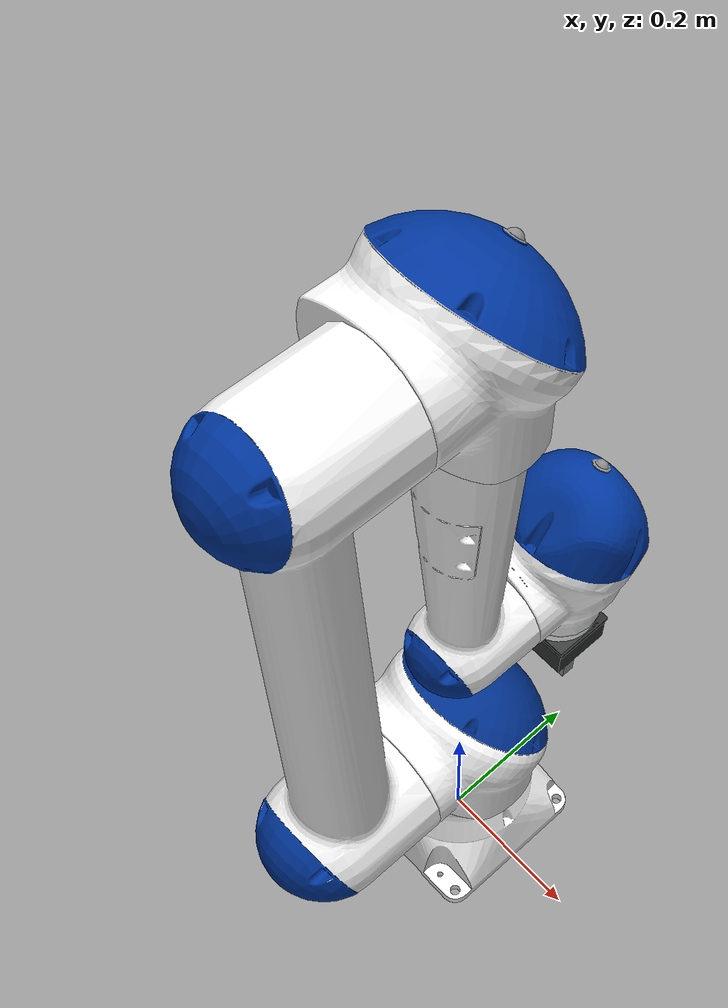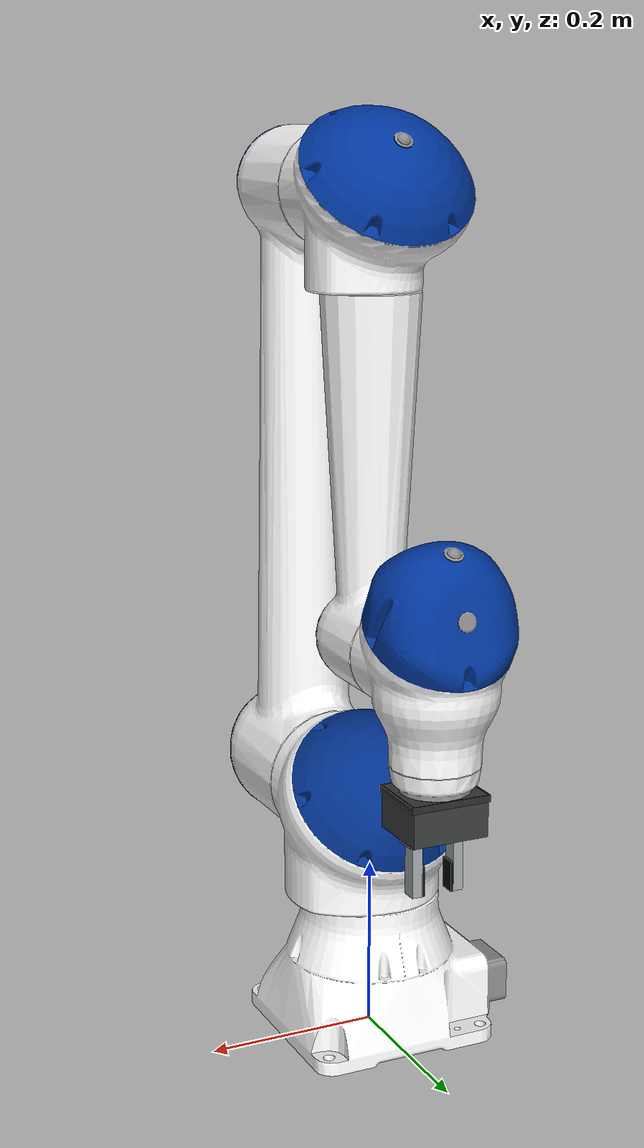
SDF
<?xml version="1.0"?>
<sdf version="1.9">
  <model name="yaskawa_hc10">
    <self_collide>false</self_collide>
    <allow_auto_disable>false</allow_auto_disable>

    <link name="base_link">
      <inertial>
        <pose>0 0 0.10 0 0 0</pose>
        <mass>24.0</mass>
        <inertia>
          <ixx>0.35</ixx>
          <iyy>0.35</iyy>
          <izz>0.30</izz>
          <ixy>0</ixy>
          <ixz>0</ixz>
          <iyz>0</iyz>
        </inertia>
      </inertial>
      <visual name="base_link_visual">
        <geometry>
          <mesh>
            <uri>model://yaskawa_hc10/meshes/hc10/visual/base_link.dae</uri>
          </mesh>
        </geometry>
      </visual>
    </link>

    <link name="link_1_s">
      <pose relative_to="joint_1_s">0 0 0 0 0 0</pose>
      <inertial>
        <mass>8.5</mass>
        <inertia>
          <ixx>0.07</ixx>
          <iyy>0.07</iyy>
          <izz>0.05</izz>
          <ixy>0</ixy>
          <ixz>0</ixz>
          <iyz>0</iyz>
        </inertia>
      </inertial>
      <visual name="link_1_s_visual">
        <geometry>
          <mesh>
            <uri>model://yaskawa_hc10/meshes/hc10/visual/link_1_s.dae</uri>
          </mesh>
        </geometry>
      </visual>
    </link>

    <link name="link_2_l">
      <pose relative_to="joint_2_l">0 0 0 0 0 0</pose>
      <inertial>
        <mass>7.0</mass>
        <inertia>
          <ixx>0.06</ixx>
          <iyy>0.06</iyy>
          <izz>0.05</izz>
          <ixy>0</ixy>
          <ixz>0</ixz>
          <iyz>0</iyz>
        </inertia>
      </inertial>
      <visual name="link_2_l_visual">
        <geometry>
          <mesh>
            <uri>model://yaskawa_hc10/meshes/hc10/visual/link_2_l.dae</uri>
          </mesh>
        </geometry>
      </visual>
    </link>

    <link name="link_3_u">
      <pose relative_to="joint_3_u">0 0 0 0 0 0</pose>
      <inertial>
        <mass>6.0</mass>
        <inertia>
          <ixx>0.05</ixx>
          <iyy>0.05</iyy>
          <izz>0.04</izz>
          <ixy>0</ixy>
          <ixz>0</ixz>
          <iyz>0</iyz>
        </inertia>
      </inertial>
      <visual name="link_3_u_visual">
        <geometry>
          <mesh>
            <uri>model://yaskawa_hc10/meshes/hc10/visual/link_3_u.dae</uri>
          </mesh>
        </geometry>
      </visual>
    </link>

    <link name="link_4_r">
      <pose relative_to="joint_4_r">0 0 0 0 0 0</pose>
      <inertial>
        <mass>3.5</mass>
        <inertia>
          <ixx>0.03</ixx>
          <iyy>0.03</iyy>
          <izz>0.02</izz>
          <ixy>0</ixy>
          <ixz>0</ixz>
          <iyz>0</iyz>
        </inertia>
      </inertial>
      <visual name="link_4_r_visual">
        <geometry>
          <mesh>
            <uri>model://yaskawa_hc10/meshes/hc10/visual/link_4_r.dae</uri>
          </mesh>
        </geometry>
      </visual>
    </link>

    <link name="link_5_b">
      <pose relative_to="joint_5_b">0 0 0 0 0 0</pose>
      <inertial>
        <mass>2.5</mass>
        <inertia>
          <ixx>0.02</ixx>
          <iyy>0.02</iyy>
          <izz>0.015</izz>
          <ixy>0</ixy>
          <ixz>0</ixz>
          <iyz>0</iyz>
        </inertia>
      </inertial>
      <visual name="link_5_b_visual">
        <geometry>
          <mesh>
            <uri>model://yaskawa_hc10/meshes/hc10/visual/link_5_b.dae</uri>
          </mesh>
        </geometry>
      </visual>
    </link>

    <link name="link_6_t">
      <pose relative_to="joint_6_t">0 0 0 0 0 0</pose>
      <inertial>
        <mass>1.2</mass>
        <inertia>
          <ixx>0.008</ixx>
          <iyy>0.008</iyy>
          <izz>0.006</izz>
          <ixy>0</ixy>
          <ixz>0</ixz>
          <iyz>0</iyz>
        </inertia>
      </inertial>
      <visual name="link_6_t_visual">
        <geometry>
          <mesh>
            <uri>model://yaskawa_hc10/meshes/hc10/visual/link_6_t.dae</uri>
          </mesh>
        </geometry>
      </visual>
    </link>

    <link name="tool0">
      <pose relative_to="joint_6_t-tool0">0 0 0 0 0 0</pose>
    </link>
    <link name="base">
      <pose relative_to="base_link-base">0 0 0 0 0 0</pose>
    </link>
    <link name="gripper">
      <pose relative_to="tool0-gripper">0 0 0 0 0 0</pose>
      <inertial>
        <pose>0.04035 0 0.0241 0 0 0</pose>
        <mass>1.0</mass>
        <inertia>
          <ixx>0.0007</ixx>
          <iyy>0.0012</iyy>
          <izz>0.0011</izz>
          <ixy>0</ixy>
          <ixz>0</ixz>
          <iyz>0</iyz>
        </inertia>
      </inertial>
      <visual name="zimmer_geh6040il_body_visual">
        <pose>0 0 0.024 0 0 0</pose>
        <geometry>
          <box>
            <size>0.090 0.078 0.048</size>
          </box>
        </geometry>
        <material>
          <ambient>0.22 0.23 0.23 1</ambient>
          <diffuse>0.22 0.23 0.23 1</diffuse>
        </material>
      </visual>
      <visual name="zimmer_geh6040il_lower_cap_visual">
        <pose>0 0 0.004 0 0 0</pose>
        <geometry>
          <box>
            <size>0.094 0.080 0.008</size>
          </box>
        </geometry>
        <material>
          <ambient>0.16 0.17 0.17 1</ambient>
          <diffuse>0.16 0.17 0.17 1</diffuse>
        </material>
      </visual>
      <visual name="zimmer_geh6040il_top_guide_visual">
        <pose>0 0 0.047 0 0 0</pose>
        <geometry>
          <box>
            <size>0.072 0.042 0.004</size>
          </box>
        </geometry>
        <material>
          <ambient>0.12 0.13 0.13 1</ambient>
          <diffuse>0.12 0.13 0.13 1</diffuse>
        </material>
      </visual>
    </link>
    <link name="gripper_left_jaw">
      <pose relative_to="gripper_left_jaw_joint">0 0 0 0 0 0</pose>
      <inertial>
        <pose>0 0 0.038 0 0 0</pose>
        <mass>0.08</mass>
        <inertia>
          <ixx>0.00004</ixx>
          <iyy>0.00004</iyy>
          <izz>0.00001</izz>
          <ixy>0</ixy>
          <ixz>0</ixz>
          <iyz>0</iyz>
        </inertia>
      </inertial>
      <visual name="left_jaw_mount_visual">
        <pose>0 0 0.005 0 0 0</pose>
        <geometry>
          <box>
            <size>0.022 0.028 0.010</size>
          </box>
        </geometry>
        <material>
          <ambient>0.62 0.64 0.64 1</ambient>
          <diffuse>0.62 0.64 0.64 1</diffuse>
        </material>
      </visual>
      <visual name="left_jaw_slider_visual">
        <pose>0.0125 0 0.001 0 0 0</pose>
        <geometry>
          <box>
            <size>0.025 0.012 0.006</size>
          </box>
        </geometry>
        <material>
          <ambient>0.42 0.44 0.44 1</ambient>
          <diffuse>0.42 0.44 0.44 1</diffuse>
        </material>
      </visual>
      <visual name="left_jaw_finger_visual">
        <pose>0 0 0.040 0 0 0</pose>
        <geometry>
          <box>
            <size>0.012 0.018 0.060</size>
          </box>
        </geometry>
        <material>
          <ambient>0.62 0.64 0.64 1</ambient>
          <diffuse>0.62 0.64 0.64 1</diffuse>
        </material>
      </visual>
      <visual name="left_jaw_pad_visual">
        <pose>0.0075 0 0.0525 0 0 0</pose>
        <geometry>
          <box>
            <size>0.003 0.019 0.035</size>
          </box>
        </geometry>
        <material>
          <ambient>0.03 0.03 0.03 1</ambient>
          <diffuse>0.03 0.03 0.03 1</diffuse>
        </material>
      </visual>
      <collision name="left_jaw_pad_collision">
        <pose>0.0075 0 0.0525 0 0 0</pose>
        <geometry><box><size>0.004 0.019 0.035</size></box></geometry>
        <surface>
          <friction><ode><mu>3.0</mu><mu2>3.0</mu2></ode></friction>
          <contact><ode><kp>1000000</kp><kd>100</kd><max_vel>0.01</max_vel><min_depth>0.001</min_depth></ode></contact>
        </surface>
      </collision>
    </link>
    <link name="gripper_right_jaw">
      <pose relative_to="gripper_right_jaw_joint">0 0 0 0 0 0</pose>
      <inertial>
        <pose>0 0 0.038 0 0 0</pose>
        <mass>0.08</mass>
        <inertia>
          <ixx>0.00004</ixx>
          <iyy>0.00004</iyy>
          <izz>0.00001</izz>
          <ixy>0</ixy>
          <ixz>0</ixz>
          <iyz>0</iyz>
        </inertia>
      </inertial>
      <visual name="right_jaw_mount_visual">
        <pose>0 0 0.005 0 0 0</pose>
        <geometry>
          <box>
            <size>0.022 0.028 0.010</size>
          </box>
        </geometry>
        <material>
          <ambient>0.62 0.64 0.64 1</ambient>
          <diffuse>0.62 0.64 0.64 1</diffuse>
        </material>
      </visual>
      <visual name="right_jaw_slider_visual">
        <pose>-0.0125 0 0.001 0 0 0</pose>
        <geometry>
          <box>
            <size>0.025 0.012 0.006</size>
          </box>
        </geometry>
        <material>
          <ambient>0.42 0.44 0.44 1</ambient>
          <diffuse>0.42 0.44 0.44 1</diffuse>
        </material>
      </visual>
      <visual name="right_jaw_finger_visual">
        <pose>0 0 0.040 0 0 0</pose>
        <geometry>
          <box>
            <size>0.012 0.018 0.060</size>
          </box>
        </geometry>
        <material>
          <ambient>0.62 0.64 0.64 1</ambient>
          <diffuse>0.62 0.64 0.64 1</diffuse>
        </material>
      </visual>
      <visual name="right_jaw_pad_visual">
        <pose>-0.0075 0 0.0525 0 0 0</pose>
        <geometry>
          <box>
            <size>0.003 0.019 0.035</size>
          </box>
        </geometry>
        <material>
          <ambient>0.03 0.03 0.03 1</ambient>
          <diffuse>0.03 0.03 0.03 1</diffuse>
        </material>
      </visual>
      <collision name="right_jaw_pad_collision">
        <pose>-0.0075 0 0.0525 0 0 0</pose>
        <geometry><box><size>0.004 0.019 0.035</size></box></geometry>
        <surface>
          <friction><ode><mu>3.0</mu><mu2>3.0</mu2></ode></friction>
          <contact><ode><kp>1000000</kp><kd>100</kd><max_vel>0.01</max_vel><min_depth>0.001</min_depth></ode></contact>
        </surface>
      </collision>
    </link>
    <link name="gripper_tcp">
      <pose relative_to="gripper_tcp_joint">0 0 0 0 0 0</pose>
    </link>

    <joint name="world_joint" type="fixed">
      <parent>world</parent>
      <child>base_link</child>
    </joint>

    <joint name="joint_1_s" type="revolute">
      <parent>base_link</parent>
      <child>link_1_s</child>
      <pose relative_to="base_link">0 0 0.275 0 0 0</pose>
      <axis>
        <xyz>0 0 1</xyz>
        <limit>
          <lower>-3.14159265359</lower>
          <upper>3.14159265359</upper>
          <effort>700.0</effort>
          <velocity>2.26892802759</velocity>
        </limit>
        <dynamics>
          <damping>10.0</damping>
          <friction>2.0</friction>
        </dynamics>
      </axis>
    </joint>

    <joint name="joint_2_l" type="revolute">
      <parent>link_1_s</parent>
      <child>link_2_l</child>
      <pose relative_to="link_1_s">0 0 0 0 0 0</pose>
      <axis>
        <xyz>0 1 0</xyz>
        <limit>
          <lower>-3.14159265359</lower>
          <upper>3.14159265359</upper>
          <effort>700.0</effort>
          <velocity>2.26892802759</velocity>
        </limit>
        <dynamics>
          <damping>10.0</damping>
          <friction>2.0</friction>
        </dynamics>
      </axis>
    </joint>

    <joint name="joint_3_u" type="revolute">
      <parent>link_2_l</parent>
      <child>link_3_u</child>
      <pose relative_to="link_2_l">0 0 0.700 0 0 0</pose>
      <axis>
        <xyz>0 -1 0</xyz>
        <limit>
          <lower>-0.08726646260</lower>
          <upper>6.19591884458</upper>
          <effort>260.0</effort>
          <velocity>3.14159265359</velocity>
        </limit>
        <dynamics>
          <damping>8.0</damping>
          <friction>1.6</friction>
        </dynamics>
      </axis>
    </joint>

    <joint name="joint_4_r" type="revolute">
      <parent>link_3_u</parent>
      <child>link_4_r</child>
      <pose relative_to="link_3_u">0 0 -0.500 0 0 0</pose>
      <axis>
        <xyz>0 0 1</xyz>
        <limit>
          <lower>-3.14159265359</lower>
          <upper>3.14159265359</upper>
          <effort>39.20</effort>
          <velocity>3.14159265359</velocity>
        </limit>
        <dynamics>
          <damping>4.0</damping>
          <friction>0.8</friction>
        </dynamics>
      </axis>
    </joint>

    <joint name="joint_5_b" type="revolute">
      <parent>link_4_r</parent>
      <child>link_5_b</child>
      <pose relative_to="link_4_r">0 0.162 0 0 0 0</pose>
      <axis>
        <xyz>0 -1 0</xyz>
        <limit>
          <lower>-3.14159265359</lower>
          <upper>3.14159265359</upper>
          <effort>31.36</effort>
          <velocity>4.36332312999</velocity>
        </limit>
        <dynamics>
          <damping>3.0</damping>
          <friction>0.6</friction>
        </dynamics>
      </axis>
    </joint>

    <joint name="joint_6_t" type="revolute">
      <parent>link_5_b</parent>
      <child>link_6_t</child>
      <pose relative_to="link_5_b">0 0 0 0 0 0</pose>
      <axis>
        <xyz>0 0 1</xyz>
        <limit>
          <lower>-3.14159265359</lower>
          <upper>3.14159265359</upper>
          <effort>31.36</effort>
          <velocity>4.36332312999</velocity>
        </limit>
        <dynamics>
          <damping>2.0</damping>
          <friction>0.5</friction>
        </dynamics>
      </axis>
    </joint>

    <joint name="joint_6_t-tool0" type="fixed">
      <parent>link_6_t</parent>
      <child>tool0</child>
      <pose relative_to="link_6_t">0 0 -0.130 3.14159265359 0 0</pose>
    </joint>

    <joint name="tool0-gripper" type="fixed">
      <parent>tool0</parent>
      <child>gripper</child>
      <pose relative_to="tool0">0 0 0 0 0 0</pose>
    </joint>

    <!-- q = 0 is closed; one positive command opens both jaws. -->
    <joint name="gripper_left_jaw_joint" type="prismatic">
      <parent>gripper</parent>
      <child>gripper_left_jaw</child>
      <pose relative_to="gripper">-0.025 0 0.0482 0 0 0</pose>
      <axis>
        <xyz>-1 0 0</xyz>
        <limit>
          <lower>0.0</lower>
          <upper>0.040</upper>
          <effort>80.0</effort>
          <velocity>0.06</velocity>
        </limit>
        <dynamics>
          <damping>2.0</damping>
          <friction>0.0</friction>
        </dynamics>
      </axis>
    </joint>

    <joint name="gripper_right_jaw_joint" type="prismatic">
      <parent>gripper</parent>
      <child>gripper_right_jaw</child>
      <pose relative_to="gripper">0.025 0 0.0482 0 0 0</pose>
      <axis>
        <xyz>1 0 0</xyz>
        <limit>
          <lower>0.0</lower>
          <upper>0.040</upper>
          <effort>80.0</effort>
          <velocity>0.06</velocity>
        </limit>
        <dynamics>
          <damping>2.0</damping>
          <friction>0.0</friction>
        </dynamics>
      </axis>
    </joint>

    <joint name="gripper_tcp_joint" type="fixed">
      <parent>gripper</parent>
      <child>gripper_tcp</child>
      <pose relative_to="gripper">0 0 0.1182 0 0 0</pose>
    </joint>

    <joint name="base_link-base" type="fixed">
      <parent>base_link</parent>
      <child>base</child>
      <pose relative_to="base_link">0 0 0.275 0 0 0</pose>
    </joint>

    <plugin
      filename="gz-sim-joint-state-publisher-system"
      name="gz::sim::systems::JointStatePublisher">
      <joint_name>joint_1_s</joint_name>
      <joint_name>joint_2_l</joint_name>
      <joint_name>joint_3_u</joint_name>
      <joint_name>joint_4_r</joint_name>
      <joint_name>joint_5_b</joint_name>
      <joint_name>joint_6_t</joint_name>
      <joint_name>gripper_left_jaw_joint</joint_name>
      <joint_name>gripper_right_jaw_joint</joint_name>
    </plugin>

    <plugin
      filename="mfja-smooth-joint-trajectory-controller-system"
      name="mfja::sim::systems::SmoothJointTrajectoryController">
      <joint_name>joint_1_s</joint_name>
      <initial_position>0.0</initial_position>

      <joint_name>joint_2_l</joint_name>
      <initial_position>0.0</initial_position>

      <joint_name>joint_3_u</joint_name>
      <initial_position>0.0</initial_position>

      <joint_name>joint_4_r</joint_name>
      <initial_position>0.0</initial_position>

      <joint_name>joint_5_b</joint_name>
      <initial_position>0.0</initial_position>

      <joint_name>joint_6_t</joint_name>
      <initial_position>0.0</initial_position>

      <default_duration_sec>3.0</default_duration_sec>
      <max_velocity_scale>0.5</max_velocity_scale>
    </plugin>

    <plugin
      filename="mfja-symmetric-gripper-controller-system"
      name="mfja::sim::systems::SymmetricGripperController">
      <left_joint_name>gripper_left_jaw_joint</left_joint_name>
      <right_joint_name>gripper_right_jaw_joint</right_joint_name>
      <sub_topic>gripper/position_command</sub_topic>
      <min_position>0.0</min_position>
      <max_position>0.040</max_position>
      <max_velocity>0.06</max_velocity>
      <initial_position>0.0</initial_position>
    </plugin>

    <plugin filename="gz-sim-detachable-joint-system"
            name="gz::sim::systems::DetachableJoint">
      <parent_link>gripper_tcp</parent_link>
      <child_model>red_cube</child_model>
      <child_link>object_link</child_link>
      <detach_topic>/red_cube/detach</detach_topic>
      <attach_topic>/red_cube/attach</attach_topic>
      <output_topic>/red_cube/attachment_state</output_topic>
    </plugin>

  </model>
</sdf>
